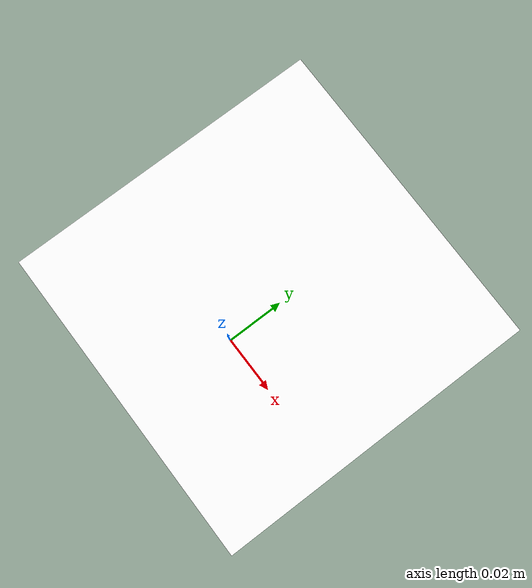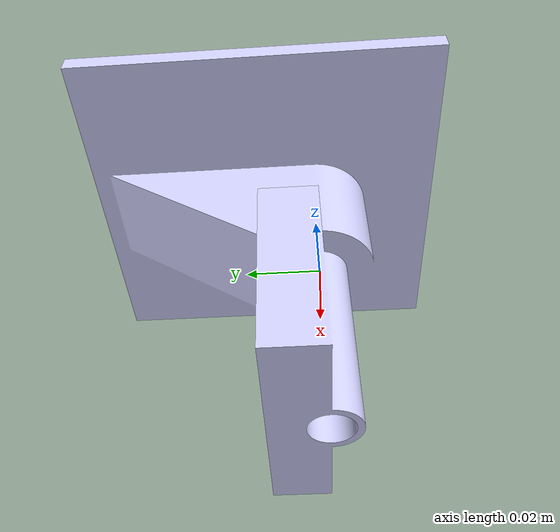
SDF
<?xml version ="1.0"?>
<sdf version="1.6">
    <model name="solar_panel">
        <static>false</static>
        <link name="solar_panel_mount">
            <collision name="solar_panel_mount_collision">
                <pose>0 0 -0.025 0 0 0</pose>
                <geometry>
                    <box>
                        <size>0.06 0.02 0.05</size>
                    </box>
                </geometry>
            </collision>
            <inertial>
                <inertia>
                    <ixx>0.01</ixx>
                    <ixy>0</ixy>
                    <ixz>0</ixz>
                    <iyy>0.01</iyy>
                    <iyz>0</iyz>
                    <izz>0.01</izz>
                </inertia>
                <mass>0.1</mass>
            </inertial>
            <visual name="solar_panel_mount_visual">
                <pose>0 0 -0.025 0 0 0</pose>
                <geometry>
                    <mesh>
                        <uri>model://eurobot_24/solar_panels/meshes/Support_Panneau_Solaire.dae</uri>
                        <scale>1 1 1</scale>
                    </mesh>
                </geometry>
            </visual>
        </link>
        <link name="solar_panel">
            <pose>0 0 0.029 0 0 0</pose>
            <collision name="solar_panel_collision">
                <geometry>
                    <box>
                        <size>0.1 0.1 0.034</size>
                    </box>
                </geometry>
            </collision>
            <inertial>
                <inertia>
                    <ixx>0.01</ixx>
                    <ixy>0</ixy>
                    <ixz>0</ixz>
                    <iyy>0.01</iyy>
                    <iyz>0</iyz>
                    <izz>0.01</izz>
                </inertia>
                <mass>0.1</mass>
            </inertial>
            <visual name="solar_panel_visual">
                <geometry>
                    <mesh>
                        <uri>model://eurobot_24/solar_panels/meshes/Panneau_Solaire.dae</uri>
                        <scale>1 1 1</scale>
                    </mesh>
                </geometry>
            </visual>
            <visual name="solar_panel_texture">
                <pose>0 0.015 0.005 0 0 -1.57079632679</pose>
                <geometry>
                    <box>
                        <size>0.1 0.1 0.0001</size>
                    </box>
                </geometry>
                <material>
                    <ambient>1 1 1 1</ambient>
                    <diffuse>1 1 1 1</diffuse>
                    <specular>0.1 0.1 0.1 1</specular>
                    <pbr>
                        <metal>
                            <albedo_map>materials/textures/vinyle_solar_panel.png</albedo_map>
                            <roughness>1.0</roughness>
                            <metalness>0.0</metalness>
                        </metal>
                    </pbr>
                </material>
            </visual>
        </link>
        <joint name="mount_to_world" type="fixed">
            <parent>world</parent>
            <child>solar_panel_mount</child>
            <pose>0 0 0 0 0 0</pose>
        </joint>
        <joint name="solar_panel_yaw" type="revolute">
            <parent>solar_panel_mount</parent>
            <child>solar_panel</child>
            <pose>0 0 0 0 0 0</pose>
            <axis>
                <xyz>0 0 1</xyz>
                <limit>
                    <lower>-3.14159</lower>
                    <upper> 3.14159</upper>
                </limit>
                <dynamics>
                    <damping>0.02</damping>
                </dynamics>
            </axis>
        </joint>
    </model>
</sdf>
